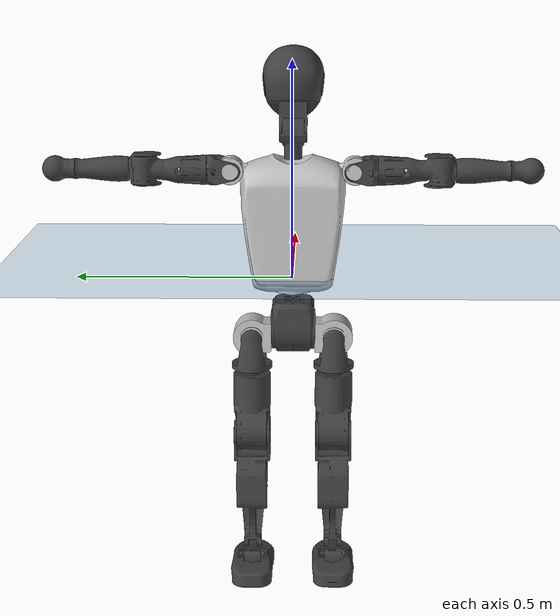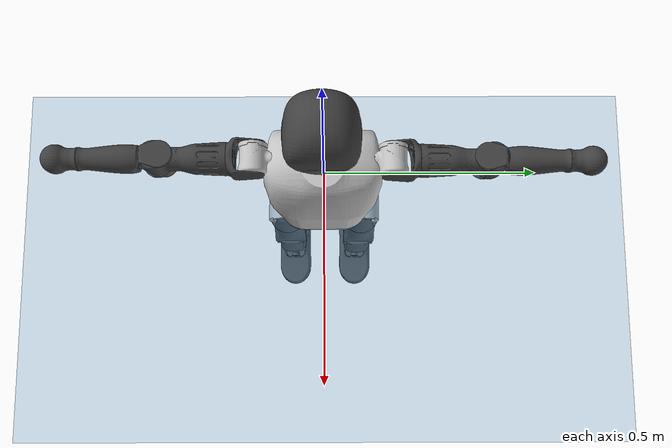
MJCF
<mujoco model="T1">
  <compiler angle="radian" assetdir="assets" balanceinertia="true" inertiafromgeom="false"/>

  <option timestep="0.005" density="1.2" viscosity="2e-05"/>

  <size nkey="1"/>

  <visual>
    <quality shadowsize="8192"/>
    <map shadowclip="0.5"/>
  </visual>

  <default>
    <default class="/">
      <joint armature="0.01" damping="0.01" frictionloss="0.1"/>
      <geom contype="0" conaffinity="0" group="1" solref="-1000 -80"/>
      <site size="0.01 0.005 0.005" group="5"/>
      <general forcelimited="true" biastype="affine" gainprm="25" biasprm="0 -25 -0.6"/>
      <default class="t1">
        <geom rgba="0.25 0.25 0.25 1"/>
        <default class="visual">
          <geom type="mesh" group="2"/>
        </default>
        <default class="collision">
          <geom group="3"/>
        </default>
        <default class="foot">
          <geom size="0.1115 0.05 0.015" type="box" condim="6" group="4" priority="1" solimp="0.015 1 0.015"/>
        </default>
        <default class="reward_collision_sphere">
          <geom group="5" rgba="1 0 0 1"/>
        </default>
      </default>
    </default>
  </default>

  <asset>
    <texture type="skybox" colorspace="auto" name="//unnamed_texture_0" builtin="gradient" rgb1="0.95 0.95 0.95" rgb2="0.95 0.95 0.95" width="100" height="600"/>
    <texture type="2d" colorspace="auto" name="texplane" builtin="checker" rgb1="0.345 0.575 0.748" rgb2="0.345 0.575 0.748" markrgb="1 1 1" width="512" height="512"/>
    <material name="MatPlane" class="/" texture="texplane" texuniform="true" texrepeat="2 2" specular="0.9"/>
    <mesh name="Trunk" class="/" file="Trunk.stl"/>
    <mesh name="H1" class="/" file="H1.stl"/>
    <mesh name="H2" class="/" file="H2.stl"/>
    <mesh name="AL1" class="/" file="AL1.stl"/>
    <mesh name="AL2" class="/" file="AL2.stl"/>
    <mesh name="AL3" class="/" file="AL3.stl"/>
    <mesh name="left_hand_link" class="/" file="left_hand_link.stl"/>
    <mesh name="AR1" class="/" file="AR1.stl"/>
    <mesh name="AR2" class="/" file="AR2.stl"/>
    <mesh name="AR3" class="/" file="AR3.stl"/>
    <mesh name="right_hand_link" class="/" file="right_hand_link.stl"/>
    <mesh name="Waist" class="/" file="Waist.stl"/>
    <mesh name="Hip_Pitch_Left" class="/" file="Hip_Pitch_Left.stl"/>
    <mesh name="Hip_Roll_Left" class="/" file="Hip_Roll_Left.stl"/>
    <mesh name="Hip_Yaw_Left" class="/" file="Hip_Yaw_Left.stl"/>
    <mesh name="Shank_Left" class="/" file="Shank_Left.stl"/>
    <mesh name="Ankle_Cross_Left" class="/" file="Ankle_Cross_Left.stl"/>
    <mesh name="left_foot_link" class="/" file="left_foot_link.stl"/>
    <mesh name="Hip_Pitch_Right" class="/" file="Hip_Pitch_Right.stl"/>
    <mesh name="Hip_Roll_Right" class="/" file="Hip_Roll_Right.stl"/>
    <mesh name="Hip_Yaw_Right" class="/" file="Hip_Yaw_Right.stl"/>
    <mesh name="Shank_Right" class="/" file="Shank_Right.stl"/>
    <mesh name="Ankle_Cross_Right" class="/" file="Ankle_Cross_Right.stl"/>
    <mesh name="right_foot_link" class="/" file="right_foot_link.stl"/>
  </asset>

  <worldbody>
    <geom name="floor" class="/" size="100 100 0.125" type="plane" group="0" material="MatPlane"/>
    <light name="toplight_shadow" class="/" pos="0 0 5" dir="0.0990148 0.0990148 -0.990148" type="directional" ambient="0.04 0.04 0.04" diffuse="0.55 0.55 0.55" specular="0.12 0.12 0.12"/>
    <light name="toplight_fill" class="/" pos="0 0 5" dir="0.0990148 0.0990148 -0.990148" type="directional" castshadow="false" ambient="0.04 0.04 0.04" diffuse="0.3 0.3 0.3" specular="0.08 0.08 0.08"/>
    <body name="trunk" childclass="t1" pos="6.43473e-05 -0.000878758 -0.000245056" quat="1 -0.000139107 -0.000168443 0.00020095">
      <inertial pos="0.0419664 -0.000479695 0.117358" quat="0.999961 -0.000130349 -0.00879484 -0.000116945" mass="9.55591" diaginertia="0.0246732 0.0489812 0.0977187"/>
      <joint name="//unnamed_joint_0" type="free" armature="0" damping="0" frictionloss="0"/>
      <geom name="//unnamed_geom_1" class="visual" rgba="0.76 0.76 0.76 1" mesh="Trunk"/>
      <geom name="//unnamed_geom_2" class="collision" size="0.0700618 0.0934157 0.140124" pos="0.0461104 0 0.134127" type="box"/>
      <geom name="//unnamed_geom_3" class="reward_collision_sphere" size="0.107428" pos="0.0461104 0 0.111772"/>
      <geom name="//unnamed_geom_4" class="reward_collision_sphere" size="0.0140124" pos="0.0461104 0.0778805 0"/>
      <geom name="//unnamed_geom_5" class="reward_collision_sphere" size="0.0140124" pos="0.0461104 -0.0778805 0"/>
      <geom name="//unnamed_geom_6" class="reward_collision_sphere" size="0.0140124" pos="0.0461104 0.0980378 0.20119"/>
      <geom name="//unnamed_geom_7" class="reward_collision_sphere" size="0.0140124" pos="0.0461104 -0.0980378 0.20119"/>
      <site name="imu" pos="-0.000860723 0.00044815 -0.000987175" size="0.00934157"/>
      <camera name="track" pos="0 -1.83248 0" quat="0.707107 0.707107 0 0" mode="trackcom"/>
      <camera name="ego_camera" pos="0.0937578 0 0.469443" quat="-0.5 -0.5 0.5 0.5"/>
      <body name="H1" pos="0.0468303 -0.000301059 0.27081" quat="1 -2.27968e-05 -2.72573e-05 3.4893e-05">
        <inertial pos="-0.00164275 -0.00212863 0.0645547" quat="0.764768 -0.0129875 0.00235666 0.64417" mass="0.359957" diaginertia="6.44753e-05 0.000144751 0.000265837"/>
        <joint name="AAHead_yaw" pos="0 0 0" axis="0.000819915 -0.000978745 0.999999" range="-1.58638 1.56485" armature="0.009232" damping="0.0139984" frictionloss="0.092113"/>
        <geom name="//unnamed_geom_8" class="visual" mesh="H1"/>
        <body name="H2" pos="-0.000376426 0.000170683 0.0684562" quat="1 -0.000208748 -0.000131473 3.58257e-05">
          <inertial pos="0.00536506 0.00105865 0.110152" quat="0.988427 0.106323 -0.0747263 -0.078255" mass="0.511711" diaginertia="0.000551717 0.00125493 0.00301297"/>
          <joint name="Head_pitch" pos="0 0 0" axis="-0.000976719 -0.999999 -0.000231696" stiffness="0.00188067" range="-1.20679 0.35557" armature="0.00918518" damping="0.00869472" frictionloss="0.0954168"/>
          <geom name="//unnamed_geom_9" class="visual" mesh="H2"/>
          <geom name="//unnamed_geom_10" class="collision" size="0.0747325" pos="0.00768507 0 0.122949"/>
          <geom name="//unnamed_geom_11" class="reward_collision_sphere" size="0.0840741" pos="0.0153701 0 0.111772"/>
        </body>
      </body>
      <body name="AL1" pos="0.0456042 0.0972715 0.244177" quat="1 8.68092e-06 0.000524845 -9.8723e-05">
        <inertial pos="-0.00126186 0.0414671 0.000712011" quat="0.50519 0.492649 -0.505868 0.496163" mass="0.43671" diaginertia="0.000371815 0.000853052 0.000517171"/>
        <joint name="Left_Shoulder_Pitch" pos="0 0 0" axis="0.00133901 0.999997 0.00186351" range="-3.31218 1.2222" armature="0.00915673" damping="0.00336546" frictionloss="0.0951834"/>
        <geom name="//unnamed_geom_12" class="visual" rgba="0.76 0.76 0.76 1" mesh="AL1"/>
        <body name="AL2" pos="0.000957031 0.0442598 7.99226e-05" quat="1 -2.36233e-05 3.25477e-05 2.39149e-05">
          <inertial pos="0.00287529 0.0346411 -8.83002e-05" quat="0.489021 0.510613 -0.486705 0.51308" mass="0.129733" diaginertia="0.000107277 0.000226046 0.000310338"/>
          <joint name="Left_Shoulder_Roll" pos="0 0 0" axis="-0.999998 0.0002394 0.00218962" range="-1.56762 1.73092" armature="0.00951799" damping="0.00479346" frictionloss="0.0923861"/>
          <geom name="//unnamed_geom_13" class="visual" mesh="AL2"/>
          <body name="AL3" pos="0.000385773 0.0565147 -0.000181707" quat="1 0.000154952 0.000106464 8.36321e-05">
            <inertial pos="-0.000880414 0.0782259 -0.000483134" quat="0.706755 0.707458 0.000434291 0.000333147" mass="0.833606" diaginertia="0.00342126 0.00827874 0.00109255"/>
            <joint name="Left_Elbow_Pitch" pos="0 0 0" axis="-6.88115e-05 -1 0.000684811" range="-2.2645 2.26677" armature="0.00915187" damping="0.00707901" frictionloss="0.0914067"/>
            <geom name="//unnamed_geom_14" class="visual" mesh="AL3"/>
            <geom name="//unnamed_geom_15" class="collision" size="0.0280247 0.0700618" pos="0 0.0458121 0" quat="0.707105 0.707108 0 0" type="cylinder"/>
            <geom name="//unnamed_geom_16" class="reward_collision_sphere" size="0.0336296"/>
            <body name="left_hand_link" pos="0.00131433 0.134649 0.00157501" quat="1 2.43506e-05 -8.16218e-05 -0.000100485">
              <inertial pos="0.000153678 0.0999141 -0.00037801" quat="0.70798 0.706233 -0.000579609 0.000413302" mass="0.270125" diaginertia="0.00219053 0.0052292 0.000377751"/>
              <joint name="Left_Elbow_Yaw" pos="0 0 0" axis="-0.00295793 -0.000149282 0.999996" range="-2.44174 -0.000441536" armature="0.00950129" damping="0.00995696" frictionloss="0.0892647"/>
              <geom name="//unnamed_geom_17" class="visual" mesh="left_hand_link"/>
              <geom name="//unnamed_geom_18" class="collision" size="0.0280247 0.0817387" pos="0 0.119111 0" quat="0.707105 0.707108 0 0" type="cylinder"/>
              <geom name="//unnamed_geom_19" class="reward_collision_sphere" size="0.0467078"/>
              <geom name="//unnamed_geom_20" class="reward_collision_sphere" size="0.0326955" pos="0 0.100787 0"/>
              <geom name="//unnamed_geom_21" class="reward_collision_sphere" size="0.0326955" pos="0 0.196992 0"/>
            </body>
          </body>
        </body>
      </body>
      <body name="AR1" pos="0.0430731 -0.0962682 0.244274" quat="1 9.84764e-06 0.000461644 2.77067e-06">
        <inertial pos="-0.000537149 -0.0407559 0.000367072" quat="0.506676 0.494803 -0.504573 0.493818" mass="0.433641" diaginertia="0.000369363 0.00083724 0.000510088"/>
        <joint name="Right_Shoulder_Pitch" pos="0 0 0" axis="-0.00164076 -0.999998 0.00107597" range="-1.2262 3.29195" armature="0.00906989" damping="0.00888272" frictionloss="0.0932963"/>
        <geom name="//unnamed_geom_22" class="visual" rgba="0.76 0.76 0.76 1" mesh="AR1"/>
        <body name="AR2" pos="-0.00080245 -0.0428449 -0.000629067" quat="1 -0.000235132 0.000207923 -5.62798e-05">
          <inertial pos="0.00331642 -0.0346316 -0.000411456" quat="0.511717 0.48791 -0.511845 0.487959" mass="0.130932" diaginertia="0.000108367 0.0002223 0.000309203"/>
          <joint name="Right_Shoulder_Roll" pos="0 0 0" axis="-0.99997 0.00497646 0.00600496" stiffness="0.00102694" range="-1.73338 1.57301" armature="0.00935303" damping="0.00302348" frictionloss="0.0922799"/>
          <geom name="//unnamed_geom_23" class="visual" mesh="AR2"/>
          <body name="AR3" pos="5.7854e-05 -0.056074 -4.04045e-06" quat="1 0.000102682 1.95255e-06 -9.2111e-05">
            <inertial pos="-0.000869657 -0.0782675 0.000511778" quat="0.709963 0.704234 -0.00196038 -0.00172343" mass="0.83824" diaginertia="0.00349978 0.00835675 0.00108553"/>
            <joint name="Right_Elbow_Pitch" pos="0 0 0" axis="0.00386172 0.999991 0.00183376" range="-2.27491 2.28527" armature="0.00965073" damping="0.00697136" frictionloss="0.0937714"/>
            <geom name="//unnamed_geom_24" class="visual" mesh="AR3"/>
            <geom name="//unnamed_geom_25" class="collision" size="0.0280247 0.0700618" pos="0 -0.0458121 0" quat="0.707105 0.707108 0 0" type="cylinder"/>
            <geom name="//unnamed_geom_26" class="reward_collision_sphere" size="0.0336296"/>
            <body name="right_hand_link" pos="-0.000369974 -0.134709 -0.000130633" quat="1 -8.56947e-06 5.516e-06 -1.08579e-05">
              <inertial pos="0.000493677 -0.101034 0.000654333" quat="0.706469 0.707743 0.000979827 -0.000602349" mass="0.268588" diaginertia="0.00220027 0.00531444 0.000374987"/>
              <joint name="Right_Elbow_Yaw" pos="0 0 0" axis="6.42508e-05 0.000304598 1" stiffness="0.0024018" range="0.00345857 2.43916" armature="0.00925645" damping="0.00814488" frictionloss="0.0920136"/>
              <geom name="//unnamed_geom_27" class="visual" mesh="right_hand_link"/>
              <geom name="//unnamed_geom_28" class="collision" size="0.0280247 0.0817387" pos="0 -0.119111 0" quat="0.707105 0.707108 0 0" type="cylinder"/>
              <geom name="//unnamed_geom_29" class="reward_collision_sphere" size="0.0467078"/>
              <geom name="//unnamed_geom_30" class="reward_collision_sphere" size="0.0326955" pos="0 -0.100787 0"/>
              <geom name="//unnamed_geom_31" class="reward_collision_sphere" size="0.0326955" pos="0 -0.196992 0"/>
            </body>
          </body>
        </body>
      </body>
      <body name="Waist" pos="0.0479255 -0.00083391 -0.129797" quat="1 4.40177e-05 -8.62343e-06 -3.87534e-05">
        <inertial pos="0.000529978 -0.000655522 0.00775653" quat="0.98362 0.000463697 -0.18023 0.00273875" mass="2.11707" diaginertia="0.00146356 0.00344399 0.00841482"/>
        <joint name="Waist" pos="0 0 0" axis="0.00138757 0.000133564 0.999999" stiffness="0.00107475" range="-1.55471 1.55573" armature="0.00945087" damping="0.000360949" frictionloss="0.0940954"/>
        <geom name="//unnamed_geom_32" class="visual" mesh="Waist"/>
        <body name="Hip_Pitch_Left" pos="0.00094496 0.097474 -0.000614138" quat="1 6.62206e-05 6.97896e-05 -0.00041805">
          <inertial pos="0.00141969 -0.00687213 -0.0209955" quat="0.974881 0.222347 0.0128606 0.00179766" mass="0.83384" diaginertia="0.000479292 0.000940032 0.0022011"/>
          <joint name="Left_Hip_Pitch" pos="0 0 0" axis="0.00518309 0.999984 -0.00206052" range="-1.81082 1.5723" armature="0.00932936" damping="0.0120519" frictionloss="0.0952575"/>
          <geom name="//unnamed_geom_33" class="visual" rgba="0.76 0.76 0.76 1" mesh="Hip_Pitch_Left"/>
          <body name="Hip_Roll_Left" pos="-0.00083778 0.00062107 -0.0234492" quat="1 5.67921e-05 -8.63548e-05 5.8293e-05">
            <inertial pos="0.00138977 -0.000529414 -0.0599245" quat="0.70712 -0.00572039 -0.00326211 0.707063" mass="0.311607" diaginertia="0.00045994 0.000959799 0.000889192"/>
            <joint name="Left_Hip_Roll" pos="0 0 0" axis="-0.999999 0.000617887 0.00103853" range="-1.58517 0.201348" armature="0.00935419" damping="0.00536852" frictionloss="0.0971625"/>
            <geom name="//unnamed_geom_34" class="visual" mesh="Hip_Roll_Left"/>
            <geom name="//unnamed_geom_35" class="reward_collision_sphere" size="0.0513786"/>
            <body name="Hip_Yaw_Left" pos="0.00109306 0.00041992 -0.0918031" quat="1 5.50181e-06 5.26297e-05 -2.80223e-05">
              <inertial pos="-0.00469217 -0.000438906 -0.0999017" quat="0.696707 -0.0339341 -0.0314092 0.715864" mass="1.788" diaginertia="0.00698464 0.0163986 0.00453727"/>
              <joint name="Left_Hip_Yaw" pos="0 0 0" axis="0.00222636 0.00435953 -0.999988" range="-1.01134 0.991545" armature="0.00966312" damping="0.0124988" frictionloss="0.0942415"/>
              <geom name="//unnamed_geom_36" class="visual" mesh="Hip_Yaw_Left"/>
              <geom name="//unnamed_geom_37" class="collision" size="0.0467078 0.0747325" type="cylinder"/>
              <body name="Shank_Left" pos="-0.00976515 0.000140602 -0.150892" quat="1 6.20956e-05 -5.32778e-06 -0.000232989">
                <inertial pos="-0.0054639 -0.000252147 -0.138814" quat="0.997613 0.00102948 -0.0237109 0.0648411" mass="1.39477" diaginertia="0.00915877 0.0221856 0.003203"/>
                <joint name="Left_Knee_Pitch" pos="0 0 0" axis="-0.00174676 0.999998 0.00133954" stiffness="0.000206678" range="-0.00956351 2.34069" armature="0.00898011" damping="0.00691398" frictionloss="0.0934774"/>
                <geom name="//unnamed_geom_38" class="visual" mesh="Shank_Left"/>
                <geom name="//unnamed_geom_39" class="collision" size="0.0467078 0.0700618" pos="0 0 -0.134127" type="cylinder"/>
                <geom name="//unnamed_geom_40" class="reward_collision_sphere" size="0.0607202"/>
                <body name="Ankle_Cross_Left" pos="-0.000550679 4.97058e-05 -0.312992" quat="1 -0.000159333 -7.76558e-05 -6.00671e-05">
                  <inertial pos="-0.00275977 0.000304457 -0.00923635" quat="0.44136 0.551566 0.55134 0.443848" mass="0.0596722" diaginertia="7.7572e-06 1.65955e-05 1.97914e-05"/>
                  <joint name="Left_Ankle_Pitch" pos="0 0 0" axis="0.00428916 0.99999 0.000976411" range="-0.868148 0.353619" armature="0.00939193" damping="0.00716384" frictionloss="0.0924606"/>
                  <geom name="//unnamed_geom_41" class="visual" mesh="Ankle_Cross_Left"/>
                  <body name="left_foot_link" pos="-0.0012033 -0.00020612 -0.0135926" quat="1 -0.0003928 -0.000244436 -4.95812e-05">
                    <inertial pos="-0.000105722 0.00027043 -0.00943322" quat="-5.32732e-05 0.62081 7.21492e-05 0.783961" mass="0.56506" diaginertia="0.000730777 0.00154708 0.00385747"/>
                    <joint name="Left_Ankle_Roll" pos="0 0 0" axis="-0.999996 -0.00118606 -0.00247442" range="-0.424883 0.428993" armature="0.00938525" damping="0.011412" frictionloss="0.0934342"/>
                    <geom name="//unnamed_geom_42" class="visual" mesh="left_foot_link"/>
                    <geom name="left_foot" class="foot" size="0.104136 0.0498855 0.0139256" pos="0.00768507 0 -0.0167658"/>
                    <geom name="//unnamed_geom_44" class="reward_collision_sphere" size="0.0485762" pos="0.00768507 0 -0.0167658"/>
                    <geom name="//unnamed_geom_45" class="reward_collision_sphere" size="0.0280247" pos="0.0730082 -0.0210735 -0.0167658"/>
                    <geom name="//unnamed_geom_46" class="reward_collision_sphere" size="0.0280247" pos="-0.0537955 -0.0210735 -0.0167658"/>
                    <site name="left_foot" class="foot" pos="0.00768507 0 -0.0167658" size="0.00934157"/>
                  </body>
                </body>
              </body>
            </body>
          </body>
        </body>
        <body name="Hip_Pitch_Right" pos="-8.44433e-06 -0.0963734 -0.000209632" quat="1 -0.000119709 0.000101138 0.000164515">
          <inertial pos="0.000510287 0.00639138 -0.0196061" quat="0.973887 -0.226569 0.0137473 -0.00459469" mass="0.836516" diaginertia="0.000486648 0.000948255 0.00216836"/>
          <joint name="Right_Hip_Pitch" pos="0 0 0" axis="0.00114752 -0.999998 -0.00157212" range="-1.58939 1.80371" armature="0.00925178" damping="0.00320145" frictionloss="0.0952764"/>
          <geom name="//unnamed_geom_47" class="visual" rgba="0.76 0.76 0.76 1" mesh="Hip_Pitch_Right"/>
          <body name="Hip_Roll_Right" pos="-0.000453902 0.000297144 -0.0227659" quat="1 -2.11037e-06 3.95435e-08 7.78575e-06">
            <inertial pos="0.000927018 -0.000192016 -0.0607071" quat="0.70708 -0.00579223 -0.00620212 0.707082" mass="0.313875" diaginertia="0.000462011 0.000977369 0.000898158"/>
            <joint name="Right_Hip_Roll" pos="0 0 0" axis="-0.999999 0.000780439 0.000854189" range="-0.219202 1.5758" armature="0.00927575" damping="0.0101504" frictionloss="0.0911166"/>
            <geom name="//unnamed_geom_48" class="visual" mesh="Hip_Roll_Right"/>
            <geom name="//unnamed_geom_49" class="reward_collision_sphere" size="0.0513786"/>
            <body name="Hip_Yaw_Right" pos="-0.000169837 -0.000332719 -0.0920399" quat="1 -1.02207e-05 1.73886e-05 -2.40721e-05">
              <inertial pos="-0.00478396 0.000294735 -0.0993862" quat="0.714825 -0.0313172 -0.0340549 0.697771" mass="1.75698" diaginertia="0.00683947 0.0162354 0.00450316"/>
              <joint name="Right_Hip_Yaw" pos="0 0 0" axis="3.65102e-05 0.000891442 -1" range="-0.996871 1.00256" armature="0.00935931" damping="0.00574523" frictionloss="0.093499"/>
              <geom name="//unnamed_geom_50" class="visual" mesh="Hip_Yaw_Right"/>
              <geom name="//unnamed_geom_51" class="collision" size="0.0467078 0.0747325" type="cylinder"/>
              <body name="Shank_Right" pos="-0.0108932 -6.5343e-05 -0.149583" quat="1 1.04525e-05 -1.86426e-05 9.37289e-06">
                <inertial pos="-0.00580957 -0.000177166 -0.136237" quat="0.999334 0.000446315 -0.0219202 -0.0291843" mass="1.43652" diaginertia="0.00932469 0.0222547 0.00339999"/>
                <joint name="Right_Knee_Pitch" pos="0 0 0" axis="0.00500679 -0.999977 0.00463581" stiffness="0.000678658" range="-2.34207 -0.0022688" armature="0.00945951" damping="0.0070187" frictionloss="0.0973259"/>
                <geom name="//unnamed_geom_52" class="visual" mesh="Shank_Right"/>
                <geom name="//unnamed_geom_53" class="collision" size="0.0467078 0.0700618" pos="0 0 -0.134127" type="cylinder"/>
                <geom name="//unnamed_geom_54" class="reward_collision_sphere" size="0.0607202"/>
                <body name="Ankle_Cross_Right" pos="0.00123456 0.000346201 -0.312725" quat="1 4.82442e-05 -6.40884e-05 -4.9181e-05">
                  <inertial pos="-0.00240637 0.00101703 -0.00863594" quat="0.445224 0.547816 0.552572 0.4431" mass="0.0599171" diaginertia="7.7561e-06 1.64658e-05 1.97299e-05"/>
                  <joint name="Right_Ankle_Pitch" pos="0 0 0" axis="0.000808918 -1 0.000190785" range="-0.332583 0.85057" armature="0.00909263" damping="0.00755768" frictionloss="0.09287"/>
                  <geom name="//unnamed_geom_55" class="visual" mesh="Ankle_Cross_Right"/>
                  <body name="right_foot_link" pos="-2.42785e-05 -0.00129554 -0.0138706" quat="1 1.04323e-05 -1.89058e-06 -5.32847e-06">
                    <inertial pos="-0.000201124 0.000247261 -0.00962776" quat="-0.000643812 0.621944 0.000409456 0.783062" mass="0.555321" diaginertia="0.000721227 0.00155677 0.00380135"/>
                    <joint name="Right_Ankle_Roll" pos="0 0 0" axis="-1 -0.000563848 2.18895e-05" range="-0.446541 0.435885" armature="0.00952325" damping="0.01079" frictionloss="0.0974857"/>
                    <geom name="//unnamed_geom_56" class="visual" mesh="right_foot_link"/>
                    <geom name="right_foot" class="foot" size="0.101848 0.0440809 0.0146258" pos="0.00768507 0 -0.0167658"/>
                    <geom name="//unnamed_geom_58" class="reward_collision_sphere" size="0.0373663"/>
                    <geom name="//unnamed_geom_59" class="reward_collision_sphere" size="0.0280247" pos="0.00768507 0 -0.0167658"/>
                    <geom name="//unnamed_geom_60" class="reward_collision_sphere" size="0.0280247" pos="0.0730082 0.0210735 -0.0167658"/>
                    <geom name="//unnamed_geom_61" class="reward_collision_sphere" size="0.0280247" pos="-0.0537955 0.0210735 -0.0167658"/>
                    <site name="right_foot" class="foot" pos="0.00768507 0 -0.0167658" size="0.00934157"/>
                  </body>
                </body>
              </body>
            </body>
          </body>
        </body>
      </body>
    </body>
  </worldbody>

  <contact>
    <pair class="/" geom1="floor" geom2="left_foot" name="//unnamed_contact_0"/>
    <pair class="/" geom1="floor" geom2="right_foot" name="//unnamed_contact_1"/>
  </contact>

  <actuator>
    <general name="AAHead_yaw" class="/" joint="AAHead_yaw" forcerange="-6.51665 6.51665" gainprm="22.8494" biasprm="0 -22.8494 -0.553002"/>
    <general name="Head_pitch" class="/" joint="Head_pitch" forcerange="-6.39426 6.39426" gainprm="22.8494" biasprm="0 -22.8494 -0.553002"/>
    <general name="Left_Shoulder_Pitch" class="/" joint="Left_Shoulder_Pitch" forcerange="-17.0417 17.0417" gainprm="22.8494" biasprm="0 -22.8494 -0.553002"/>
    <general name="Left_Shoulder_Roll" class="/" joint="Left_Shoulder_Roll" forcerange="-16.9739 16.9739" gainprm="22.8494" biasprm="0 -22.8494 -0.553002"/>
    <general name="Left_Elbow_Pitch" class="/" joint="Left_Elbow_Pitch" forcerange="-17.072 17.072" gainprm="22.8494" biasprm="0 -22.8494 -0.553002"/>
    <general name="Left_Elbow_Yaw" class="/" joint="Left_Elbow_Yaw" forcerange="-16.8846 16.8846" gainprm="22.8494" biasprm="0 -22.8494 -0.553002"/>
    <general name="Right_Shoulder_Pitch" class="/" joint="Right_Shoulder_Pitch" forcerange="-17.2593 17.2593" gainprm="22.8494" biasprm="0 -22.8494 -0.553002"/>
    <general name="Right_Shoulder_Roll" class="/" joint="Right_Shoulder_Roll" forcerange="-16.2754 16.2754" gainprm="22.8494" biasprm="0 -22.8494 -0.553002"/>
    <general name="Right_Elbow_Pitch" class="/" joint="Right_Elbow_Pitch" forcerange="-16.8384 16.8384" gainprm="22.8494" biasprm="0 -22.8494 -0.553002"/>
    <general name="Right_Elbow_Yaw" class="/" joint="Right_Elbow_Yaw" forcerange="-16.5445 16.5445" gainprm="22.8494" biasprm="0 -22.8494 -0.553002"/>
    <general name="Waist" class="/" joint="Waist" forcerange="-28.1499 28.1499" gainprm="22.8494" biasprm="0 -22.8494 -0.553002"/>
    <general name="Left_Hip_Pitch" class="/" joint="Left_Hip_Pitch" forcerange="-41.8599 41.8599" gainprm="22.8494" biasprm="0 -22.8494 -0.553002"/>
    <general name="Left_Hip_Roll" class="/" joint="Left_Hip_Roll" forcerange="-28.4441 28.4441" gainprm="22.8494" biasprm="0 -22.8494 -0.553002"/>
    <general name="Left_Hip_Yaw" class="/" joint="Left_Hip_Yaw" forcerange="-28.9645 28.9645" gainprm="22.8494" biasprm="0 -22.8494 -0.553002"/>
    <general name="Left_Knee_Pitch" class="/" joint="Left_Knee_Pitch" forcerange="-56.1114 56.1114" gainprm="22.8494" biasprm="0 -22.8494 -0.553002"/>
    <general name="Left_Ankle_Pitch" class="/" joint="Left_Ankle_Pitch" forcerange="-19.2962 19.2962" gainprm="22.8494" biasprm="0 -22.8494 -0.553002"/>
    <general name="Left_Ankle_Roll" class="/" joint="Left_Ankle_Roll" forcerange="-14.4487 14.4487" gainprm="22.8494" biasprm="0 -22.8494 -0.553002"/>
    <general name="Right_Hip_Pitch" class="/" joint="Right_Hip_Pitch" forcerange="-42.3892 42.3892" gainprm="22.8494" biasprm="0 -22.8494 -0.553002"/>
    <general name="Right_Hip_Roll" class="/" joint="Right_Hip_Roll" forcerange="-27.917 27.917" gainprm="22.8494" biasprm="0 -22.8494 -0.553002"/>
    <general name="Right_Hip_Yaw" class="/" joint="Right_Hip_Yaw" forcerange="-27.1386 27.1386" gainprm="22.8494" biasprm="0 -22.8494 -0.553002"/>
    <general name="Right_Knee_Pitch" class="/" joint="Right_Knee_Pitch" forcerange="-56.0213 56.0213" gainprm="22.8494" biasprm="0 -22.8494 -0.553002"/>
    <general name="Right_Ankle_Pitch" class="/" joint="Right_Ankle_Pitch" forcerange="-18.5597 18.5597" gainprm="22.8494" biasprm="0 -22.8494 -0.553002"/>
    <general name="Right_Ankle_Roll" class="/" joint="Right_Ankle_Roll" forcerange="-14.1794 14.1794" gainprm="22.8494" biasprm="0 -22.8494 -0.553002"/>
  </actuator>

  <sensor>
    <gyro site="imu" name="imu_angular_velocity"/>
    <velocimeter site="imu" name="imu_linear_velocity"/>
    <framelinvel objtype="site" objname="left_foot" name="left_foot_global_linear_velocity"/>
    <framelinvel objtype="site" objname="right_foot" name="right_foot_global_linear_velocity"/>
  </sensor>

  <keyframe>
    <key name="home" qpos="0 0 0.6385 1 0 0 0 0 0 0 1.4 0 -0.4 0 -1.4 0 0.4 0 -0.4 0 0 0.8 -0.4 0 0.4 0 0 -0.8 0.4 0"/>
  </keyframe>
</mujoco>
